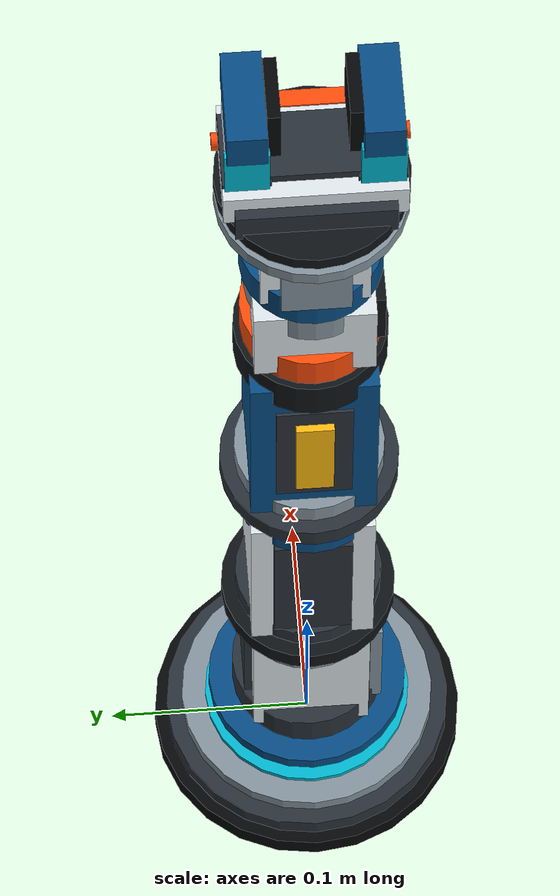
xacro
<?xml version="1.0"?>
<robot name="marm" xmlns:xacro="http://www.ros.org/wiki/xacro">

    <!-- Industrial palette inspired by UR, Franka, OpenMANIPULATOR and KUKA. -->
    <material name="Graphite"><color rgba="0.055 0.070 0.085 1"/></material>
    <material name="Gunmetal"><color rgba="0.16 0.19 0.22 1"/></material>
    <material name="PearlWhite"><color rgba="0.88 0.91 0.93 1"/></material>
    <material name="Aluminium"><color rgba="0.52 0.58 0.62 1"/></material>
    <material name="OceanBlue"><color rgba="0.02 0.30 0.52 1"/></material>
    <material name="ElectricCyan"><color rgba="0.00 0.72 0.82 1"/></material>
    <material name="SafetyOrange"><color rgba="1.00 0.30 0.035 1"/></material>
    <material name="SignalYellow"><color rgba="1.00 0.73 0.06 1"/></material>
    <material name="RubberBlack"><color rgba="0.018 0.022 0.026 1"/></material>

    <!-- Constants -->
    <xacro:property name="M_PI" value="3.14159"/>

    <!-- link1 properties -->
    <xacro:property name="link0_radius" value="0.05" />
    <xacro:property name="link0_length" value="0.04" />
    <xacro:property name="link0_mass" value="1" />

    <!-- link1 properties -->
    <xacro:property name="link1_radius" value="0.03" />
    <xacro:property name="link1_length" value="0.10" />
    <xacro:property name="link1_mass" value="1" />

    <!-- link2 properties -->
    <xacro:property name="link2_radius" value="0.03" />
    <xacro:property name="link2_length" value="0.14" />
    <xacro:property name="link2_mass" value="0.8" />

    <!-- link3 properties -->
    <xacro:property name="link3_radius" value="0.03" />
    <xacro:property name="link3_length" value="0.15" />
    <xacro:property name="link3_mass" value="0.8" />

    <!-- link4 properties -->
    <xacro:property name="link4_radius" value="0.025" />
    <xacro:property name="link4_length" value="0.06" />
    <xacro:property name="link4_mass" value="0.7" />

    <!-- link5 properties -->
    <xacro:property name="link5_radius" value="0.03" />
    <xacro:property name="link5_length" value="0.06" />
    <xacro:property name="link5_mass" value="0.7" />

    <!-- link6 properties -->
    <xacro:property name="link6_radius" value="0.04" />
    <xacro:property name="link6_length" value="0.02" />
    <xacro:property name="link6_mass" value="0.6" />

    <!-- gripper -->
    <xacro:property name="gripper_length" value="0.03" />
    <xacro:property name="gripper_width" value="0.01" />
    <xacro:property name="gripper_height" value="0.06" />
    <xacro:property name="gripper_mass" value="0.5" />

    <!-- Gripper frame -->
    <xacro:property name="grasp_frame_radius" value="0.001" />

    <!-- Macro for inertia matrix -->
    <xacro:macro name="cylinder_inertial_matrix" params="m r h">
        <inertial>
            <mass value="${m}" />
            <inertia ixx="${m*(3*r*r+h*h)/12}" ixy = "0" ixz = "0"
                iyy="${m*(3*r*r+h*h)/12}" iyz = "0"
                izz="${m*r*r/2}" />
        </inertial>
    </xacro:macro>

    <xacro:macro name="box_inertial_matrix" params="m w h d">
        <inertial>
            <mass value="${m}" />
            <inertia ixx="${m*(h*h+d*d)/12}" ixy = "0" ixz = "0"
                iyy="${m*(w*w+d*d)/12}" iyz = "0"
                izz="${m*(w*w+h*h)/12}" />
        </inertial>
    </xacro:macro>

    <!-- Reusable multi-part visual primitives keep the model portable and mesh-free. -->
    <xacro:macro name="visual_cylinder" params="xyz rpy radius length material">
        <visual>
            <origin xyz="${xyz}" rpy="${rpy}"/>
            <geometry><cylinder radius="${radius}" length="${length}"/></geometry>
            <material name="${material}"/>
        </visual>
    </xacro:macro>

    <xacro:macro name="visual_box" params="xyz rpy size material">
        <visual>
            <origin xyz="${xyz}" rpy="${rpy}"/>
            <geometry><box size="${size}"/></geometry>
            <material name="${material}"/>
        </visual>
    </xacro:macro>

    <xacro:macro name="visual_sphere" params="xyz radius material">
        <visual>
            <origin xyz="${xyz}" rpy="0 0 0"/>
            <geometry><sphere radius="${radius}"/></geometry>
            <material name="${material}"/>
        </visual>
    </xacro:macro>

    <!-- /////////////////////////////////////   ARM BASE    ////////////////////////////////////////////// -->
    <link name="base_link">
        <xacro:visual_cylinder xyz="0 0 -0.006" rpy="0 0 0" radius="0.078" length="0.012" material="RubberBlack"/>
        <xacro:visual_cylinder xyz="0 0 0.004" rpy="0 0 0" radius="0.072" length="0.014" material="Gunmetal"/>
        <xacro:visual_cylinder xyz="0 0 0.014" rpy="0 0 0" radius="0.064" length="0.010" material="Aluminium"/>
        <xacro:visual_cylinder xyz="0 0 0.020" rpy="0 0 0" radius="0.052" length="0.004" material="ElectricCyan"/>
    </link>

    <joint name="base_joint" type="fixed">
        <origin xyz="0 0 ${link0_length/2}" rpy="0 0 0" />
        <parent link="base_link"/>
        <child link="link0" />
    </joint>

    <!-- /////////////////////////////////////    LINK0    ////////////////////////////////////////////// -->
    <link name="link0">
        <xacro:visual_cylinder xyz="0 0 0" rpy="0 0 0" radius="0.043" length="0.032" material="PearlWhite"/>
        <xacro:visual_cylinder xyz="0 0 -0.016" rpy="0 0 0" radius="0.050" length="0.008" material="Graphite"/>
        <xacro:visual_cylinder xyz="0 0 0.016" rpy="0 0 0" radius="0.050" length="0.008" material="OceanBlue"/>
        <xacro:visual_box xyz="0 -0.043 0" rpy="0 0 0" size="0.028 0.006 0.020" material="SafetyOrange"/>
        <xacro:visual_box xyz="0 0.030 0.004" rpy="0 0 0" size="0.034 0.018 0.026" material="Gunmetal"/>
        <xacro:visual_box xyz="0 0.030 0.018" rpy="0 0 0" size="0.022 0.006 0.010" material="Aluminium"/>
        <collision>
            <origin xyz="0 0 0" rpy="0 0 0" />
            <geometry>
                <cylinder radius="${link0_radius}" length="${link0_length}"/>
            </geometry>
        </collision>
        <cylinder_inertial_matrix m="${link0_mass}" r="${link0_radius}" h="${link0_length}"/>
    </link>

    <joint name="joint1" type="revolute">
        <parent link="link0"/>
        <child link="link1"/>
        <origin xyz="0 0 ${link0_length/2}" rpy="0 ${M_PI/2} 0" />
        <axis xyz="-1 0 0" />
        <limit effort="300" velocity="1" lower="${-M_PI}" upper="${M_PI}"/>
    </joint>

    <!-- /////////////////////////////////////   LINK1  ////////////////////////////////////////////// -->
    <link name="link1" >
        <!-- Box-section upper arm: a load-bearing shell rather than a plain round tube. -->
        <xacro:visual_box xyz="-${link1_length/2} 0 0" rpy="0 0 0" size="0.090 0.058 0.058" material="PearlWhite"/>
        <xacro:visual_cylinder xyz="-0.010 0 0" rpy="0 ${M_PI/2} 0" radius="0.038" length="0.020" material="Gunmetal"/>
        <xacro:visual_cylinder xyz="-0.090 0 0" rpy="0 ${M_PI/2} 0" radius="0.035" length="0.020" material="Aluminium"/>
        <xacro:visual_box xyz="-${link1_length/2} -0.026 0.008" rpy="0 0 0" size="0.058 0.008 0.018" material="ElectricCyan"/>
        <xacro:visual_box xyz="-${link1_length/2} 0.026 -0.008" rpy="0 0 0" size="0.042 0.006 0.012" material="SafetyOrange"/>
        <xacro:visual_box xyz="-${link1_length/2} 0.030 0" rpy="0 0 0" size="0.062 0.006 0.034" material="Gunmetal"/>
        <xacro:visual_box xyz="-${link1_length/2} -0.033 0" rpy="0 0 0" size="0.074 0.006 0.042" material="Aluminium"/>
        <xacro:visual_box xyz="-0.050 0 0.030" rpy="0 0 0" size="0.062 0.036 0.006" material="Graphite"/>
        <collision>
            <origin xyz="-${link1_length/2} 0 0" rpy="0 ${M_PI/2} 0" />
            <geometry>
                <cylinder radius="${link1_radius}" length="${link1_length}"/>
            </geometry>
        </collision>
        <cylinder_inertial_matrix m="${link1_mass}" r="${link1_radius}" h="${link1_length}"/>
    </link>

    <joint name="joint2" type="revolute">
        <parent link="link1"/>
        <child link="link2"/>
        <origin xyz="-${link1_length} 0 0.0" rpy="-${M_PI/2} 0 ${M_PI/2}" />
        <axis xyz="1 0 0" />
        <limit effort="300" velocity="1" lower="${-M_PI}" upper="${M_PI}" />
    </joint>

    <!-- ///////////////////////////////////////   LINK2  ////////////////////////////////////////////// -->
    <link name="link2" >
        <!-- Rectangular forearm shell with externally visible longitudinal spine. -->
        <xacro:visual_box xyz="0 0 ${link2_length/2}" rpy="0 0 0" size="0.060 0.060 0.118" material="PearlWhite"/>
        <xacro:visual_cylinder xyz="0 0 0.012" rpy="0 0 0" radius="0.036" length="0.024" material="Gunmetal"/>
        <xacro:visual_cylinder xyz="0 0 0.128" rpy="0 0 0" radius="0.036" length="0.024" material="OceanBlue"/>
        <xacro:visual_cylinder xyz="0 0 0.006" rpy="0 0 0" radius="0.043" length="0.012" material="Graphite"/>
        <xacro:visual_box xyz="0 -0.027 ${link2_length/2}" rpy="0 0 0" size="0.036 0.009 0.076" material="Aluminium"/>
        <xacro:visual_box xyz="0 -0.033 ${link2_length/2}" rpy="0 0 0" size="0.020 0.004 0.052" material="SafetyOrange"/>
        <xacro:visual_box xyz="0 0.030 ${link2_length/2}" rpy="0 0 0" size="0.038 0.006 0.090" material="Gunmetal"/>
        <xacro:visual_box xyz="0 -0.034 ${link2_length/2}" rpy="0 0 0" size="0.044 0.006 0.098" material="PearlWhite"/>
        <xacro:visual_box xyz="0 0 ${link2_length-0.010}" rpy="0 0 0" size="0.046 0.040 0.010" material="Aluminium"/>

        <collision>
            <origin xyz="0 0 ${link2_length/2}" rpy="0 0 0" />
            <geometry>
                <cylinder radius="${link2_radius}" length="${link2_length}"/>
            </geometry>
        </collision>
        <cylinder_inertial_matrix m="${link2_mass}" r="${link2_radius}" h="${link2_length}"/>
    </link>

    <joint name="joint3" type="revolute">
        <parent link="link2"/>
        <child link="link3"/>
        <origin xyz="0 0 ${link2_length}" rpy="0 ${M_PI} 0" />
        <axis xyz="-1 0 0" />
        <limit effort="300" velocity="1" lower="${-M_PI}" upper="${M_PI}" />
    </joint>

    <!-- /////////////////////////////////   LINK3  ///////////////////////////////////////////////////// -->
    <link name="link3" >
        <!-- Matching box-section return arm; collar cylinders remain the rotating interfaces. -->
        <xacro:visual_box xyz="0 0 -${link3_length/2}" rpy="0 0 0" size="0.060 0.060 0.126" material="OceanBlue"/>
        <xacro:visual_cylinder xyz="0 0 -0.012" rpy="0 0 0" radius="0.036" length="0.024" material="Aluminium"/>
        <xacro:visual_cylinder xyz="0 0 -0.138" rpy="0 0 0" radius="0.036" length="0.024" material="Graphite"/>
        <xacro:visual_cylinder xyz="0 0 -0.006" rpy="0 0 0" radius="0.043" length="0.012" material="Gunmetal"/>
        <xacro:visual_box xyz="0 0.027 -${link3_length/2}" rpy="0 0 0" size="0.036 0.009 0.082" material="Gunmetal"/>
        <xacro:visual_box xyz="0 0.033 -${link3_length/2}" rpy="0 0 0" size="0.018 0.004 0.060" material="SignalYellow"/>
        <xacro:visual_box xyz="0 -0.030 -${link3_length/2}" rpy="0 0 0" size="0.038 0.006 0.094" material="PearlWhite"/>
        <xacro:visual_box xyz="0 -0.034 -${link3_length/2}" rpy="0 0 0" size="0.044 0.006 0.102" material="Aluminium"/>
        <xacro:visual_box xyz="0 0 -${link3_length-0.010}" rpy="0 0 0" size="0.046 0.040 0.010" material="Graphite"/>
        <collision>
            <origin xyz="0 0 -${link3_length/2}" rpy="0 0 0" />
            <geometry>
                <cylinder radius="${link3_radius}" length="${link3_length}"/>
            </geometry>
        </collision>
        <cylinder_inertial_matrix m="${link3_mass}" r="${link3_radius}" h="${link3_length}"/>
    </link>

    <joint name="joint4" type="revolute">
        <parent link="link3"/>
        <child link="link4"/>
        <origin xyz="0.0 0.0 -${link3_length}" rpy="0 ${M_PI/2} ${M_PI}" />
        <axis xyz="-1 0 0" />
        <limit effort="300" velocity="1" lower="${-M_PI}" upper="${M_PI}" />
    </joint>

    <!-- ///////////////////////////////////   LINK4  //////////////////////////////////////////////// -->
    <link name="link4" >
        <!-- Compact rectangular wrist housing between the two rotary collars. -->
        <xacro:visual_box xyz="${link4_length/2} 0 0" rpy="0 0 0" size="0.052 0.056 0.056" material="PearlWhite"/>
        <xacro:visual_cylinder xyz="0.010 0 0" rpy="0 ${M_PI/2} 0" radius="0.033" length="0.020" material="SafetyOrange"/>
        <xacro:visual_cylinder xyz="0.050 0 0" rpy="0 ${M_PI/2} 0" radius="0.031" length="0.020" material="Aluminium"/>
        <xacro:visual_box xyz="${link4_length/2} -0.024 0" rpy="0 0 0" size="0.026 0.006 0.018" material="ElectricCyan"/>
        <xacro:visual_box xyz="${link4_length/2} 0.028 0" rpy="0 0 0" size="0.026 0.006 0.030" material="Gunmetal"/>
        <xacro:visual_box xyz="${link4_length/2} 0 -0.030" rpy="0 0 0" size="0.036 0.034 0.006" material="Graphite"/>
        <collision>
            <origin xyz="${link4_length/2} 0 0" rpy="0 ${M_PI/2} 0" />
            <geometry>
                <cylinder radius="${link4_radius}" length="${link4_length}"/>
            </geometry>
        </collision>
        <cylinder_inertial_matrix m="${link4_mass}" r="${link4_radius}" h="${link4_length}"/>
    </link>

    <joint name="joint5" type="revolute">
        <parent link="link4"/>
        <child link="link5"/>
        <origin xyz="${link4_length} 0.0 0.0" rpy="0 ${M_PI/2} 0" />
        <axis xyz="1 0 0" />
        <limit effort="300" velocity="1" lower="${-M_PI}" upper="${M_PI}" />
    </joint>

    <!-- //////////////////////////////////   LINK5  ///////////////////////////////////////////////// -->
    <link name="link5">
        <!-- Final wrist link uses a square actuator body, not a simple tube. -->
        <xacro:visual_box xyz="0 0 ${link5_length/2}" rpy="0 0 0" size="0.050 0.050 0.046" material="PearlWhite"/>
        <xacro:visual_cylinder xyz="0 0 0.010" rpy="0 0 0" radius="0.033" length="0.020" material="OceanBlue"/>
        <xacro:visual_cylinder xyz="0 0 0.050" rpy="0 0 0" radius="0.033" length="0.020" material="Graphite"/>
        <xacro:visual_box xyz="0 -0.025 ${link5_length/2}" rpy="0 0 0" size="0.018 0.006 0.026" material="SafetyOrange"/>
        <xacro:visual_box xyz="0 0.028 ${link5_length/2}" rpy="0 0 0" size="0.030 0.006 0.026" material="Gunmetal"/>
        <xacro:visual_box xyz="0 -0.030 ${link5_length/2}" rpy="0 0 0" size="0.032 0.006 0.032" material="Aluminium"/>
        <xacro:visual_box xyz="0 0 ${link5_length-0.006}" rpy="0 0 0" size="0.042 0.040 0.008" material="Graphite"/>
        <collision>
            <origin xyz="0 0 ${link4_length/2} " rpy="0 0 0" />
            <geometry>
                <cylinder radius="${link5_radius}" length="${link5_length}"/>
            </geometry>
        </collision>
        <cylinder_inertial_matrix m="${link5_mass}" r="${link5_radius}" h="${link5_length}"/>
    </link>

    <joint name="joint6" type="revolute">
        <parent link="link5"/>
        <child link="link6"/>
        <origin xyz="0 0 ${link4_length}" rpy="${1.5*M_PI} -${M_PI/2} 0" />
        <axis xyz="1 0 0" />
        <limit effort="300" velocity="1" lower="${-2*M_PI}" upper="${2*M_PI}" />
    </joint>

    <!-- ////////////////////////////////   LINK6  ///////////////////////////////////////////////// -->
    <link name="link6">
        <xacro:visual_cylinder xyz="${link6_length/2} 0 0" rpy="0 ${M_PI/2} 0" radius="0.038" length="${link6_length}" material="OceanBlue"/>
        <xacro:visual_cylinder xyz="0.004 0 0" rpy="0 ${M_PI/2} 0" radius="0.044" length="0.008" material="Aluminium"/>
        <xacro:visual_cylinder xyz="0.018 0 0" rpy="0 ${M_PI/2} 0" radius="0.044" length="0.008" material="Graphite"/>
        <xacro:visual_box xyz="0.027 0 0" rpy="0 0 0" size="0.018 0.072 0.058" material="Gunmetal"/>
        <xacro:visual_box xyz="0.037 0 0.025" rpy="0 0 0" size="0.018 0.050 0.008" material="SafetyOrange"/>
        <xacro:visual_box xyz="0.035 0 0" rpy="0 0 0" size="0.020 0.082 0.048" material="PearlWhite"/>
        <xacro:visual_box xyz="0.046 0 0" rpy="0 0 0" size="0.008 0.054 0.032" material="Gunmetal"/>
        <collision>
            <origin xyz="${link6_length/2} 0 0" rpy="0 ${M_PI/2} 0" />
            <geometry>
                <cylinder radius="${link6_radius}" length="${link6_length}"/>
            </geometry>
        </collision>
        <cylinder_inertial_matrix m="${link6_mass}" r="${link6_radius}" h="${link6_length}"/>
    </link>

    <joint name="finger_joint1" type="prismatic">
        <parent link="link6"/>
        <child link="gripper_finger_link1"/>
        <origin xyz="${link6_length} -0.03 0" rpy="0 0 0" />
        <axis xyz="0 1 0" />
        <limit effort="100" lower="0" upper="0.06" velocity="0.02"/>
    </joint>

    <!-- //////////////////////////////////////   gripper   ////////////////////////////////////////////// -->
    <!-- LEFT GRIPPER AFT LINK -->
    <link name="gripper_finger_link1">
        <!-- Visual-only parallel-jaw finger: carriage, jaw, inner rubber pad and fastener. -->
        <xacro:visual_box xyz="0.014 0 0" rpy="0 0 0" size="0.028 0.022 0.036" material="Gunmetal"/>
        <xacro:visual_box xyz="0.041 0 0" rpy="0 0 0" size="0.034 0.018 0.032" material="PearlWhite"/>
        <xacro:visual_box xyz="0.064 0 0" rpy="0 0 0" size="0.022 0.018 0.044" material="OceanBlue"/>
        <xacro:visual_box xyz="0.064 0.012 0" rpy="0 0 0" size="0.034 0.006 0.030" material="RubberBlack"/>
        <xacro:visual_box xyz="0.041 0 -0.018" rpy="0 0 0" size="0.030 0.020 0.004" material="ElectricCyan"/>
        <xacro:visual_cylinder xyz="0.014 -0.012 0.012" rpy="${M_PI/2} 0 0" radius="0.004" length="0.004" material="SafetyOrange"/>
        <collision>
            <origin xyz="${gripper_height/2} 0 0" rpy="0 ${M_PI/2} 0" />
            <geometry>
                <box size="${gripper_length} ${gripper_width} ${gripper_height}" />
            </geometry>
        </collision>
        <box_inertial_matrix m="${gripper_mass}" w="${gripper_width}" h="${gripper_height}" d="${gripper_length}"/>
    </link>

    <joint name="finger_joint2" type="fixed">
        <parent link="link6"/>
        <child link="gripper_finger_link2"/>
        <origin xyz="${link6_length} 0.03 0" rpy="0 0 0" />
    </joint>

    <!-- RIGHT GRIPPER AFT LINK -->
    <link name="gripper_finger_link2">
        <!-- Mirrored visual-only parallel-jaw finger; collision and finger joint stay unchanged. -->
        <xacro:visual_box xyz="0.014 0 0" rpy="0 0 0" size="0.028 0.022 0.036" material="Gunmetal"/>
        <xacro:visual_box xyz="0.041 0 0" rpy="0 0 0" size="0.034 0.018 0.032" material="PearlWhite"/>
        <xacro:visual_box xyz="0.064 0 0" rpy="0 0 0" size="0.022 0.018 0.044" material="OceanBlue"/>
        <xacro:visual_box xyz="0.064 -0.012 0" rpy="0 0 0" size="0.034 0.006 0.030" material="RubberBlack"/>
        <xacro:visual_box xyz="0.041 0 -0.018" rpy="0 0 0" size="0.030 0.020 0.004" material="ElectricCyan"/>
        <xacro:visual_cylinder xyz="0.014 0.012 0.012" rpy="${M_PI/2} 0 0" radius="0.004" length="0.004" material="SafetyOrange"/>
        <collision>
            <origin xyz="${gripper_height/2} 0 0" rpy="0 ${M_PI/2} 0" />
            <geometry>
                <box size="${gripper_length} ${gripper_width} ${gripper_height}" />
            </geometry>
        </collision>
        <box_inertial_matrix m="${gripper_mass}" w="${gripper_width}" h="${gripper_height}" d="${gripper_length}"/>
    </link>

    <!-- Grasping frame -->
    <link name="grasping_frame"/>

    <joint name="grasping_frame_joint" type="fixed">
        <parent link="link6"/>
        <child link="grasping_frame"/>
        <origin xyz="${gripper_height} 0 0" rpy="0 0 0"/>
    </joint>

</robot>
